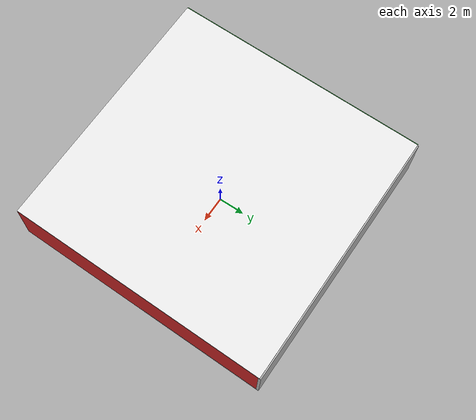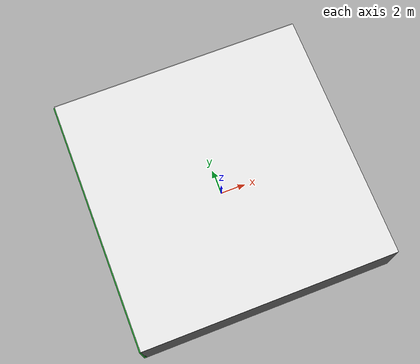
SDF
<sdf version="1.4">
 <world name="default">
  <physics type="ode">
   <max_step_size>0.001</max_step_size>
   <real_time_factor>1</real_time_factor>
   <real_time_update_rate>1000</real_time_update_rate>
   <gravity>0 0 -9.8</gravity>
  </physics>
  <scene><ambient>0.4 0.4 0.4 1</ambient><background>0.7 0.7 0.7 1</background><shadows>1</shadows></scene>
  <model name="Surrounding">
   <static>1</static>
   <link name="Ceiling">
    <collision name="Ceiling_Collision"><geometry><box><size>20 20 0.1</size></box></geometry></collision>
    <visual name="Ceiling_Visual">
     <geometry><box><size>20 20 0.1</size></box></geometry>
     <material>
      <script><uri>file://media/materials/scripts/gazebo.material</uri><name>Gazebo/WhiteGlow</name></script>
     </material>
    </visual>
    <pose>0 0 4.05 0 0 0</pose>
   </link>
   <link name="Wall_South">
    <collision name="Wall_South_Collision">
     <geometry><box><size>20 0 4</size></box></geometry>
     <pose>0 0 2 0 -0 0</pose>
    </collision>
    <visual name="Wall_South_Visual">
     <pose>0 0 2 0 -0 0</pose>
     <geometry><box><size>20 0 4</size></box></geometry>
     <material>
      <script><uri>file://media/materials/scripts/gazebo.material</uri><name>Gazebo/Road</name></script>
     </material>
    </visual>
    <velocity_decay><linear>0</linear><angular>0</angular></velocity_decay>
    <pose>0 -10 0 0 -0 0</pose>
   </link>
   <link name="Wall_East">
    <collision name="Wall_21_Collision">
     <geometry><box><size>20 0 4</size></box></geometry>
     <pose>0 0 2 0 -0 0</pose>
    </collision>
    <visual name="Wall_21_Visual">
     <pose>0 0 2 0 -0 0</pose>
     <geometry><box><size>20 0 4</size></box></geometry>
     <material>
      <script><uri>file://media/materials/scripts/gazebo.material</uri><name>Gazebo/Red</name></script>
     </material>
    </visual>
    <velocity_decay><linear>0</linear><angular>0</angular></velocity_decay>
    <pose>10 0 0 0 -0 1.5708</pose>
   </link>
   <link name="Wall_North">
    <collision name="Wall_22_Collision">
     <geometry><box><size>20 0.2 4</size></box></geometry>
     <pose>0 0 2 0 -0 0</pose>
    </collision>
    <visual name="Wall_22_Visual">
     <pose>0 0 2 0 -0 0</pose>
     <geometry><box><size>20 0.2 4</size></box></geometry>
     <material>
      <script><uri>file://media/materials/scripts/gazebo.material</uri><name>Gazebo/LightOff</name></script>
     </material>
    </visual>
    <velocity_decay><linear>0</linear><angular>0</angular></velocity_decay>
    <pose>0 10 0 0 -0 0</pose>
   </link>
   <link name="Wall_West">
    <collision name="Wall_23_Collision">
     <geometry><box><size>20 0.2 4</size></box></geometry>
     <pose>0 0 2 0 -0 0</pose>
    </collision>
    <visual name="Wall_23_Visual">
     <pose>0 0 2 0 -0 0</pose>
     <geometry><box><size>20 0.2 4</size></box></geometry>
     <material>
      <script><uri>file://media/materials/scripts/gazebo.material</uri><name>Gazebo/GreenGlow</name></script>
     </material>
    </visual>
    <velocity_decay><linear>0</linear><angular>0</angular></velocity_decay>
    <pose>-10 0 0 0 0 -1.5708</pose>
   </link>
   <link name="Ground_link">
    <collision name="collision">
     <pose>0 0 .05 0 -0 0</pose>
     <geometry><box><size>20 20 0.1</size></box></geometry>
    </collision>
    <visual name="visual">
     <pose>0 0 .05 0 -0 0</pose>
     <geometry><box><size>20 20 0.1</size></box></geometry>
     <material>
      <script><uri>file://media/materials/scripts/gazebo.material</uri><name>Gazebo/WhiteGlow</name></script>
     </material>
    </visual>
   </link>
   <static>1</static>
  </model>
  <spherical_coordinates>
   <surface_model>EARTH_WGS84</surface_model>
   <latitude_deg>0</latitude_deg>
   <longitude_deg>0</longitude_deg>
   <elevation>0</elevation>
   <heading_deg>0</heading_deg>
  </spherical_coordinates>
  <light name="lightball_0" type="diffuse">
   <diffuse>0.8 0.8 0.8 1</diffuse>
   <specular>0.2 0.2 0.2 1</specular>
   <attenuation>
    <range>100</range>
    <constant>0.7</constant>
    <linear>0.01</linear>
    <quadratic>0.001</quadratic>
   </attenuation>
   <direction>-0.5 0.1 -0.9</direction>
   <pose>-1.33516201263 9.63196616126 3.24594251498 0 0 0</pose>
  </light>
  <light name="lightball_1" type="diffuse">
   <diffuse>0.8 0.8 0.8 1</diffuse>
   <specular>0.2 0.2 0.2 1</specular>
   <attenuation>
    <range>100</range>
    <constant>0.7</constant>
    <linear>0.01</linear>
    <quadratic>0.001</quadratic>
   </attenuation>
   <direction>-0.5 0.1 -0.9</direction>
   <pose>3.89453147736 -4.29499944369 0.949288262885 0 0 0</pose>
  </light>
  <light name="lightball_2" type="diffuse">
   <diffuse>0.8 0.8 0.8 1</diffuse>
   <specular>0.2 0.2 0.2 1</specular>
   <attenuation>
    <range>100</range>
    <constant>0.7</constant>
    <linear>0.01</linear>
    <quadratic>0.001</quadratic>
   </attenuation>
   <direction>-0.5 0.1 -0.9</direction>
   <pose>7.5872230144 -8.05734178742 2.55091027948 0 0 0</pose>
  </light>
  <light name="lightball_3" type="diffuse">
   <diffuse>0.8 0.8 0.8 1</diffuse>
   <specular>0.2 0.2 0.2 1</specular>
   <attenuation>
    <range>100</range>
    <constant>0.7</constant>
    <linear>0.01</linear>
    <quadratic>0.001</quadratic>
   </attenuation>
   <direction>-0.5 0.1 -0.9</direction>
   <pose>1.93868625419 -9.64958597192 0.721301026135 0 0 0</pose>
  </light>
  <light name="lightball_4" type="diffuse">
   <diffuse>0.8 0.8 0.8 1</diffuse>
   <specular>0.2 0.2 0.2 1</specular>
   <attenuation>
    <range>100</range>
    <constant>0.7</constant>
    <linear>0.01</linear>
    <quadratic>0.001</quadratic>
   </attenuation>
   <direction>-0.5 0.1 -0.9</direction>
   <pose>-8.56129208325 -6.50818467982 0.733172338245 0 0 0</pose>
  </light>
  <light name="lightball_5" type="diffuse">
   <diffuse>0.8 0.8 0.8 1</diffuse>
   <specular>0.2 0.2 0.2 1</specular>
   <attenuation>
    <range>100</range>
    <constant>0.7</constant>
    <linear>0.01</linear>
    <quadratic>0.001</quadratic>
   </attenuation>
   <direction>-0.5 0.1 -0.9</direction>
   <pose>-7.58602705568 -0.978916493385 1.85789812757 0 0 0</pose>
  </light>
  <include><uri>model://cabinet</uri><pose>-4.62894377341 -4.216401908 0 0 0 2.28052052472</pose></include>
  <include><uri>model://table</uri><pose>-1.55385313041 8.13553566752 0 0 0 2.10683529459</pose></include>
  <include>
   <uri>model://textured_shapes</uri>
   <pose>4.52641099948 -7.62880426226 0 0 0 2.2693317021</pose>
  </include>
  <include>
   <uri>model://robocup_3Dsim_goal</uri>
   <pose>4.0293378734 -0.908572047273 0 0 0 0.437560584223</pose>
  </include>
 </world>
</sdf>

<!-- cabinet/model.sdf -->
<sdf version="1.5">
  <model name="cabinet">
    <static>true</static>
    <link name="cabinet_bottom_plate">
      <inertial>
        <pose>0 0 -1 0 0 0</pose>
        <inertia>
          <ixx>2.050000</ixx>
          <ixy>0</ixy>
          <ixz>0</ixz>
          <iyy>2.050000</iyy>
          <iyz>0</iyz>
          <izz>2.050000</izz>
        </inertia>
        <mass>25.000000</mass>
      </inertial>
      <collision name="cabinet_bottom_plate_geom">
        <pose>0 0 0.010000 0 0 0</pose>
        <geometry>
          <box>
            <size>0.450000 0.450000 0.020000</size>
          </box>
        </geometry>
      </collision>
      <visual name="cabinet_bottom_plate_geom_visual">
        <pose>0 0 0.010000 0 0 0</pose>
        <geometry>
          <box>
            <size>0.450000 0.450000 0.020000</size>
          </box>
        </geometry>
        <material>
          <script>
            <uri>model://media/materials/scripts/gazebo.material</uri>
            <name>Gazebo/Wood</name>
          </script>
        </material>
      </visual>
      <collision name="cabinet_bottom_plate_geom_cabinet_back_plate">
        <pose>0.235000 0 0.510000 0 0 0</pose>
        <geometry>
          <box>
            <size>0.020000 0.450000 1.020000</size>
          </box>
        </geometry>
      </collision>
      <visual name="cabinet_bottom_plate_geom_cabinet_back_plate_visual">
        <pose>0.235000 0 0.510000 0 0 0</pose>
        <geometry>
          <box>
            <size>0.020000 0.450000 1.020000</size>
          </box>
        </geometry>
        <material>
          <script>
            <uri>model://media/materials/scripts/gazebo.material</uri>
            <name>Gazebo/Wood</name>
          </script>
        </material>
      </visual>
      <collision name="cabinet_bottom_plate_geom_cabinet_left_plate">
        <pose>0 0.235000 0.510000 0 0 0</pose>
        <geometry>
          <box>
            <size>0.450000 0.020000 1.020000</size>
          </box>
        </geometry>
      </collision>
      <visual name="cabinet_bottom_plate_geom_cabinet_left_plate_visual">
        <pose>0 0.235000 0.510000 0 0 0</pose>
        <geometry>
          <box>
            <size>0.450000 0.020000 1.020000</size>
          </box>
        </geometry>
        <material>
          <script>
            <uri>model://media/materials/scripts/gazebo.material</uri>
            <name>Gazebo/Wood</name>
          </script>
        </material>
      </visual>
      <collision name="cabinet_bottom_plate_geom_cabinet_middle_plate">
        <pose>0 0 0.510000 0 0 0</pose>
        <geometry>
          <box>
            <size>0.450000 0.450000 0.020000</size>
          </box>
        </geometry>
      </collision>
      <visual name="cabinet_bottom_plate_geom_cabinet_middle_plate_visual">
        <pose>0 0 0.510000 0 0 0</pose>
        <geometry>
          <box>
            <size>0.450000 0.450000 0.020000</size>
          </box>
        </geometry>
        <material>
          <script>
            <uri>model://media/materials/scripts/gazebo.material</uri>
            <name>Gazebo/Wood</name>
          </script>
        </material>
      </visual>
      <collision name="cabinet_bottom_plate_geom_cabinet_right_plate">
        <pose>0 -0.235000 0.510000 0 0 0</pose>
        <geometry>
          <box>
            <size>0.450000 0.020000 1.020000</size>
          </box>
        </geometry>
      </collision>
      <visual name="cabinet_bottom_plate_geom_cabinet_right_plate_visual">
        <pose>0 -0.235000 0.510000 0 0 0</pose>
        <geometry>
          <box>
            <size>0.450000 0.020000 1.020000</size>
          </box>
        </geometry>
        <material>
          <script>
            <uri>model://media/materials/scripts/gazebo.material</uri>
            <name>Gazebo/Wood</name>
          </script>
        </material>
      </visual>
      <collision name="cabinet_bottom_plate_geom_cabinet_top_plate">
        <pose>0 0 1.010000 0 0 0</pose>
        <geometry>
          <box>
            <size>0.450000 0.450000 0.020000</size>
          </box>
        </geometry>
      </collision>
      <visual name="cabinet_bottom_plate_geom_cabinet_top_plate_visual">
        <pose>0 0 1.010000 0 0 0</pose>
        <geometry>
          <box>
            <size>0.450000 0.450000 0.020000</size>
          </box>
        </geometry>
        <material>
          <script>
            <uri>model://media/materials/scripts/gazebo.material</uri>
            <name>Gazebo/Wood</name>
          </script>
        </material>
      </visual>
    </link>
  </model>
</sdf>

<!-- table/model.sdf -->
<sdf version="1.5">
  <model name="table">
    <static>true</static>
    <link name="link">
      <collision name="surface">
        <pose>0 0 1.0 0 0 0</pose>
        <geometry>
          <box>
            <size>1.5 0.8 0.03</size>
          </box>
        </geometry>
        <surface>
          <friction>
            <ode>
              <mu>0.6</mu>
              <mu2>0.6</mu2>
            </ode>
          </friction>
        </surface>
      </collision>
      <visual name="visual1">
        <pose>0 0 1.0 0 0 0</pose>
        <geometry>
          <box>
            <size>1.5 0.8 0.03</size>
          </box>
        </geometry>
        <material>
          <script>
            <uri>model://media/materials/scripts/gazebo.material</uri>
            <name>Gazebo/Wood</name>
          </script>
        </material>
      </visual>
      <collision name="front_left_leg">
        <pose>0.68 0.38 0.5 0 0 0</pose>
        <geometry>
          <cylinder>
            <radius>0.02</radius>
            <length>1.0</length>
          </cylinder>
        </geometry>
      </collision>
      <visual name="front_left_leg">
        <pose>0.68 0.38 0.5 0 0 0</pose>
        <geometry>
          <cylinder>
            <radius>0.02</radius>
            <length>1.0</length>
          </cylinder>
        </geometry>
        <material>
          <script>
            <uri>model://media/materials/scripts/gazebo.material</uri>
            <name>Gazebo/Grey</name>
          </script>
        </material>
      </visual>
      <collision name="front_right_leg">
        <pose>0.68 -0.38 0.5 0 0 0</pose>
        <geometry>
          <cylinder>
            <radius>0.02</radius>
            <length>1.0</length>
          </cylinder>
        </geometry>
      </collision>
      <visual name="front_right_leg">
        <pose>0.68 -0.38 0.5 0 0 0</pose>
        <geometry>
          <cylinder>
            <radius>0.02</radius>
            <length>1.0</length>
          </cylinder>
        </geometry>
        <material>
          <script>
            <uri>model://media/materials/scripts/gazebo.material</uri>
            <name>Gazebo/Grey</name>
          </script>
        </material>
      </visual>
      <collision name="back_right_leg">
        <pose>-0.68 -0.38 0.5 0 0 0</pose>
        <geometry>
          <cylinder>
            <radius>0.02</radius>
            <length>1.0</length>
          </cylinder>
        </geometry>
      </collision>
      <visual name="back_right_leg">
        <pose>-0.68 -0.38 0.5 0 0 0</pose>
        <geometry>
          <cylinder>
            <radius>0.02</radius>
            <length>1.0</length>
          </cylinder>
        </geometry>
        <material>
          <script>
            <uri>model://media/materials/scripts/gazebo.material</uri>
            <name>Gazebo/Grey</name>
          </script>
        </material>
      </visual>
      <collision name="back_left_leg">
        <pose>-0.68 0.38 0.5 0 0 0</pose>
        <geometry>
          <cylinder>
            <radius>0.02</radius>
            <length>1.0</length>
          </cylinder>
        </geometry>
      </collision>
      <visual name="back_left_leg">
        <pose>-0.68 0.38 0.5 0 0 0</pose>
        <geometry>
          <cylinder>
            <radius>0.02</radius>
            <length>1.0</length>
          </cylinder>
        </geometry>
        <material>
          <script>
            <uri>model://media/materials/scripts/gazebo.material</uri>
            <name>Gazebo/Grey</name>
          </script>
        </material>
      </visual>
    </link>
  </model>
</sdf>

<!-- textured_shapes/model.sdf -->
<sdf version="1.6">
  <model name="textured_shapes">
    <pose>0 0 0.5 0 0 0</pose>
    <link name="box">
      <pose>0 -1.5 0 0 0 0</pose>
      <collision name="collision">
        <geometry>
          <box>
            <size>1 1 1</size>
          </box>
        </geometry>
      </collision>
      <visual name="visual">
        <geometry>
          <box>
            <size>1 1 1</size>
          </box>
        </geometry>
        <material>
          <script>
            <uri>model://../model_source/models/textured_shapes/materials/scripts</uri>
            <uri>model://../model_source/models/textured_shapes/materials/textures</uri>
            <name>TexturedShape/Squares</name>
          </script>
        </material>
      </visual>
    </link>
    <link name="sphere">
      <collision name="collision">
        <geometry>
          <sphere>
            <radius>0.5</radius>
          </sphere>
        </geometry>
      </collision>
      <visual name="visual">
        <geometry>
          <sphere>
            <radius>0.5</radius>
          </sphere>
        </geometry>
        <material>
          <script>
            <uri>model://../model_source/models/textured_shapes/materials/scripts</uri>
            <uri>model://../model_source/models/textured_shapes/materials/textures</uri>
            <name>TexturedShape/Squares</name>
          </script>
        </material>
      </visual>
    </link>
    <link name="cylinder">
      <pose>0 1.5 0 0 0 0</pose>
      <collision name="collision">
        <geometry>
          <cylinder>
            <radius>0.5</radius>
            <length>1</length>
          </cylinder>
        </geometry>
      </collision>
      <visual name="visual">
        <geometry>
          <cylinder>
            <radius>0.5</radius>
            <length>1</length>
          </cylinder>
        </geometry>
        <material>
          <script>
            <uri>model://../model_source/models/textured_shapes/materials/scripts</uri>
            <uri>model://../model_source/models/textured_shapes/materials/textures</uri>
            <name>TexturedShape/Squares</name>
          </script>
        </material>
      </visual>
    </link>
  </model>
</sdf>

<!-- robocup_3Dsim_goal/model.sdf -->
<sdf version="1.5">
  <model name="robocup_3d_goal">
    <static>true</static>
    <link name="left_post">
      <pose>0 1.05 0.45 0 0 0</pose>
      <collision name="collision">
        <geometry>
          <cylinder>
            <radius>0.05</radius>
            <length>0.9</length>
          </cylinder>
        </geometry>
      </collision>
      <visual name="visual">
        <geometry>
          <cylinder>
            <radius>0.05</radius>
            <length>0.9</length>
          </cylinder>
        </geometry>
        <material>
          <script>
            <uri>file://media/materials/scripts/gazebo.material</uri>
            <name>Gazebo/ZincYellow</name>
          </script>
        </material>
      </visual>
    </link>
    <link name="left_support_horiz_lower">
      <pose>0.30 1.05 0.01 0 0 0</pose>
      <collision name="collision">
        <geometry>
          <box>
            <size>0.50 0.02 0.02</size>
          </box>
        </geometry>
      </collision>
      <visual name="visual">
        <geometry>
          <box>
            <size>0.50 0.02 0.02</size>
          </box>
        </geometry>
        <material>
          <script>
            <uri>file://media/materials/scripts/gazebo.material</uri>
            <name>Gazebo/White</name>
          </script>
        </material>
      </visual>
    </link>
    <link name="left_support_horiz_upper">
      <pose>0.30 1.05 0.79 0 0 0</pose>
      <collision name="collision">
        <geometry>
          <box>
            <size>0.50 0.02 0.02</size>
          </box>
        </geometry>
      </collision>
      <visual name="visual">
        <geometry>
          <box>
            <size>0.50 0.02 0.02</size>
          </box>
        </geometry>
        <material>
          <script>
            <uri>file://media/materials/scripts/gazebo.material</uri>
            <name>Gazebo/White</name>
          </script>
        </material>
      </visual>
    </link>
    <link name="left_support_vertical">
      <pose>0.56 1.05 0.4 0 1.5708 0</pose>
      <collision name="collision">
        <geometry>
          <box>
            <size>0.80 0.02 0.02</size>
          </box>
        </geometry>
      </collision>
      <visual name="visual">
        <geometry>
          <box>
            <size>0.80 0.02 0.02</size>
          </box>
        </geometry>
        <material>
          <script>
            <uri>file://media/materials/scripts/gazebo.material</uri>
            <name>Gazebo/White</name>
          </script>
        </material>
      </visual>
    </link>
    <link name="right_support_horiz_lower">
      <pose>0.30 -1.05 0.01 0 0 0</pose>
      <collision name="collision">
        <geometry>
          <box>
            <size>0.50 0.02 0.02</size>
          </box>
        </geometry>
      </collision>
      <visual name="visual">
        <geometry>
          <box>
            <size>0.50 0.02 0.02</size>
          </box>
        </geometry>
        <material>
          <script>
            <uri>file://media/materials/scripts/gazebo.material</uri>
            <name>Gazebo/White</name>
          </script>
        </material>
      </visual>
    </link>
    <link name="right_support_horiz_upper">
      <pose>0.30 -1.05 0.79 0 0 0</pose>
      <collision name="collision">
        <geometry>
          <box>
            <size>0.50 0.02 0.02</size>
          </box>
        </geometry>
      </collision>
      <visual name="visual">
        <geometry>
          <box>
            <size>0.50 0.02 0.02</size>
          </box>
        </geometry>
        <material>
          <script>
            <uri>file://media/materials/scripts/gazebo.material</uri>
            <name>Gazebo/White</name>
          </script>
        </material>
      </visual>
    </link>
    <link name="right_support_vertical">
      <pose>0.56 -1.05 0.4 0 1.5708 0</pose>
      <collision name="collision">
        <geometry>
          <box>
            <size>0.80 0.02 0.02</size>
          </box>
        </geometry>
      </collision>
      <visual name="visual">
        <geometry>
          <box>
            <size>0.80 0.02 0.02</size>
          </box>
        </geometry>
        <material>
          <script>
            <uri>file://media/materials/scripts/gazebo.material</uri>
            <name>Gazebo/White</name>
          </script>
        </material>
      </visual>
    </link>
    <link name="center_support_horiz_lower">
      <pose>0.56 0 0.01 0 1.5708 0</pose>
      <collision name="collision">
        <geometry>
          <box>
            <size>0.02 2.08 0.02</size>
          </box>
        </geometry>
      </collision>
      <visual name="visual">
        <geometry>
          <box>
            <size>0.02 2.08 0.02</size>
          </box>
        </geometry>
        <material>
          <script>
            <uri>file://media/materials/scripts/gazebo.material</uri>
            <name>Gazebo/White</name>
          </script>
        </material>
      </visual>
    </link>
    <link name="center_support_horiz_upper">
      <pose>0.56 0 0.79 0 1.5708 0</pose>
      <collision name="collision">
        <geometry>
          <box>
            <size>0.02 2.08 0.02</size>
          </box>
        </geometry>
      </collision>
      <visual name="visual">
        <geometry>
          <box>
            <size>0.02 2.08 0.02</size>
          </box>
        </geometry>
        <material>
          <script>
            <uri>file://media/materials/scripts/gazebo.material</uri>
            <name>Gazebo/White</name>
          </script>
        </material>
      </visual>
    </link>
    <link name="right_post">
      <pose>0 -1.05 0.45 0 0 0</pose>
      <collision name="collision">
        <geometry>
          <cylinder>
            <radius>0.05</radius>
            <length>0.9</length>
          </cylinder>
        </geometry>
      </collision>
      <visual name="visual">
        <geometry>
          <cylinder>
            <radius>0.05</radius>
            <length>0.9</length>
          </cylinder>
        </geometry>
        <material>
          <script>
            <uri>file://media/materials/scripts/gazebo.material</uri>
            <name>Gazebo/ZincYellow</name>
          </script>
        </material>
      </visual>
    </link>
    <link name="crossbar">
      <pose>0 0 0.85 1.57 1.57 0</pose>
      <collision name="collision">
        <geometry>
          <cylinder>
            <radius>0.05</radius>
            <length>2.0</length>
          </cylinder>
        </geometry>
      </collision>
      <visual name="visual">
        <geometry>
          <cylinder>
            <radius>0.05</radius>
            <length>2.0</length>
          </cylinder>
        </geometry>
        <material>
          <script>
            <uri>file://media/materials/scripts/gazebo.material</uri>
            <name>Gazebo/ZincYellow</name>
          </script>
        </material>
      </visual>
    </link>
    <link name="center_net">
      <pose>0.56 0 0.40 0 0 0</pose>
      <collision name="collision">
        <geometry>
          <box>
            <size>0.01 2.1 0.80</size>
          </box>
        </geometry>
      </collision>
      <visual name="visual">
        <geometry>
          <box>
            <size>0.01 2.1 0.80</size>
          </box>
        </geometry>
        <material>
          <script>
            <uri>model://../model_source/models/robocup09_spl_field/materials/scripts/</uri>
            <uri>model://../model_source/models/robocup09_spl_field/materials/textures/</uri>
            <name>RoboCup/Net</name>
          </script>
        </material>
      </visual>
    </link>
    <link name="left_net">
      <pose>0.30 1.05 0.40 0 0 0</pose>
      <collision name="collision">
        <geometry>
          <box>
            <size>0.50 0.01 0.76</size>
          </box>
        </geometry>
      </collision>
      <visual name="visual">
        <geometry>
          <box>
            <size>0.50 0.01 0.76</size>
          </box>
        </geometry>
        <material>
          <script>
            <uri>model://../model_source/models/robocup09_spl_field/materials/scripts/</uri>
            <uri>model://../model_source/models/robocup09_spl_field/materials/textures/</uri>
            <name>RoboCup/Net</name>
          </script>
        </material>
      </visual>
    </link>
    <link name="right_net">
      <pose>0.30 -1.05 0.40 0 0 0</pose>
      <collision name="collision">
        <geometry>
          <box>
            <size>0.50 0.01 0.76</size>
          </box>
        </geometry>
      </collision>
      <visual name="visual">
        <geometry>
          <box>
            <size>0.50 0.01 0.76</size>
          </box>
        </geometry>
        <material>
          <script>
            <uri>model://../model_source/models/robocup09_spl_field/materials/scripts/</uri>
            <uri>model://../model_source/models/robocup09_spl_field/materials/textures/</uri>
            <name>RoboCup/Net</name>
          </script>
        </material>
      </visual>
    </link>
  </model>
</sdf>
